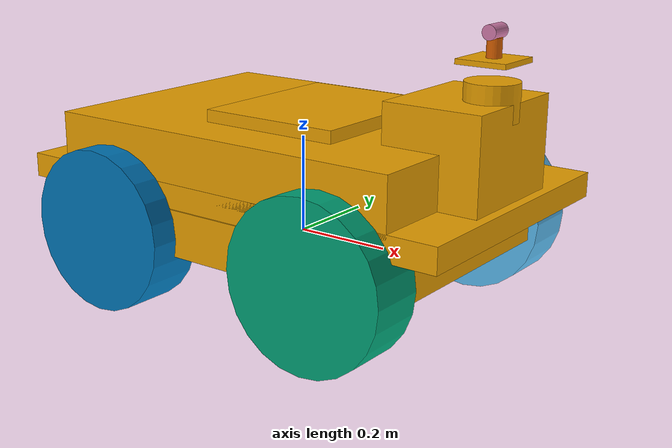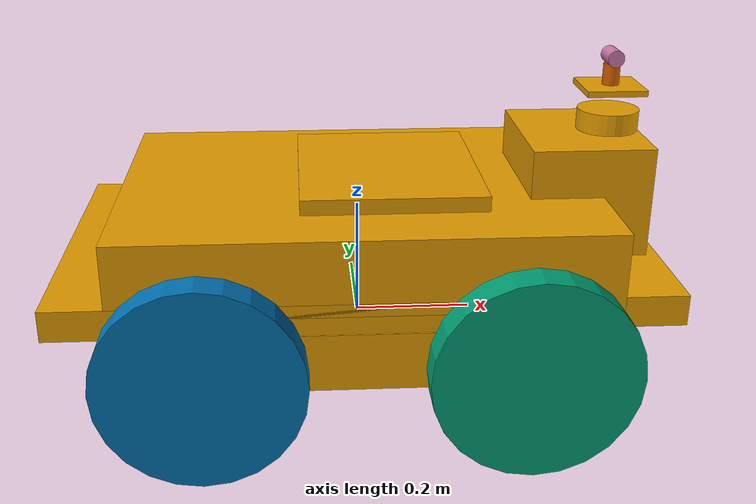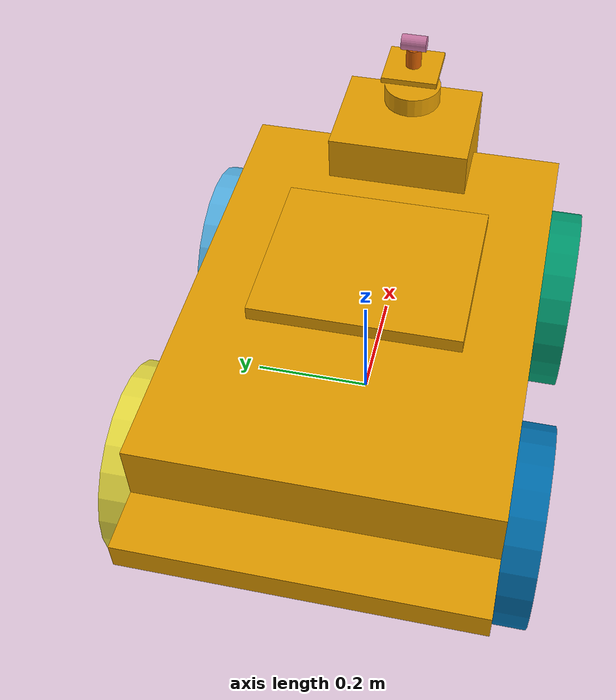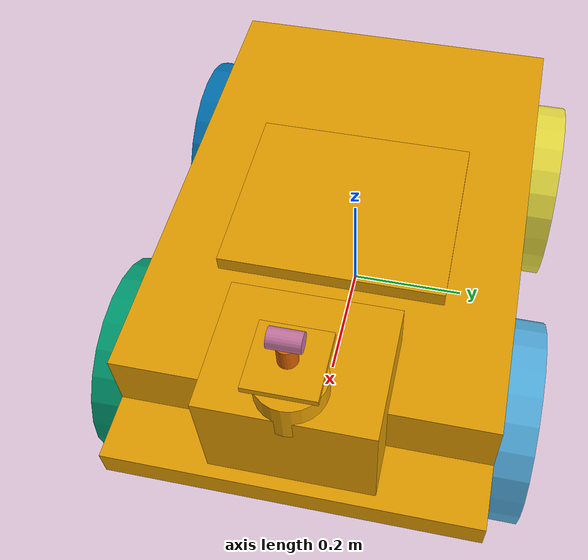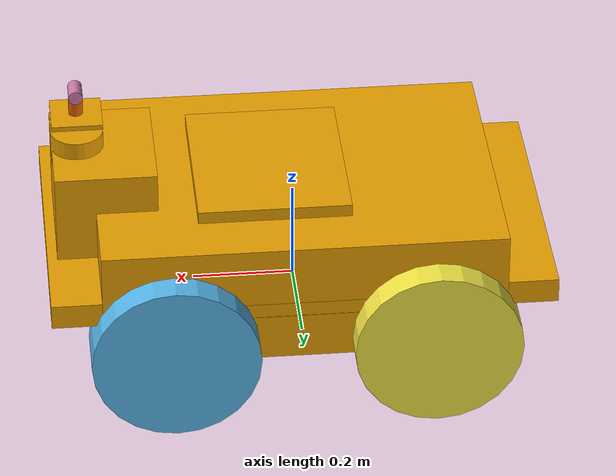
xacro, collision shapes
<?xml version="1.0" ?>
<robot name="husky_robot_model">

  <joint name="husky_robot_model__front_left_wheel_joint" type="revolute">
    <parent link="husky_robot_model__base_link"/>
    <child link="husky_robot_model__front_left_wheel_link"/>
    <origin rpy="0  0  0" xyz="0.256    0.2854   0.03282"/>
    <axis xyz="0  1  0"/>
    <limit effort="0.0" lower="-1e+16" upper="1e+16" velocity="0.0"/>
  </joint>
  <joint name="husky_robot_model__front_right_wheel_joint" type="revolute">
    <parent link="husky_robot_model__base_link"/>
    <child link="husky_robot_model__front_right_wheel_link"/>
    <origin rpy="0  0  0" xyz="0.256   -0.2854   0.03282"/>
    <axis xyz="0  1  0"/>
    <limit effort="0.0" lower="-1e+16" upper="1e+16" velocity="0.0"/>
  </joint>
  <joint name="husky_robot_model__rear_left_wheel_joint" type="revolute">
    <parent link="husky_robot_model__base_link"/>
    <child link="husky_robot_model__rear_left_wheel_link"/>
    <origin rpy="0  0  0" xyz="-0.256    0.2854   0.03282"/>
    <axis xyz="0  1  0"/>
    <limit effort="0.0" lower="-1e+16" upper="1e+16" velocity="0.0"/>
  </joint>
  <joint name="husky_robot_model__rear_right_wheel_joint" type="revolute">
    <parent link="husky_robot_model__base_link"/>
    <child link="husky_robot_model__rear_right_wheel_link"/>
    <origin rpy="0  0  0" xyz="-0.256   -0.2854   0.03282"/>
    <axis xyz="0  1  0"/>
    <limit effort="0.0" lower="-1e+16" upper="1e+16" velocity="0.0"/>
  </joint>
  <joint name="husky_robot_model__pan_gimbal_joint" type="fixed">
    <parent link="laser"/>
    <child link="husky_robot_model__pan_gimbal_link"/>
    <origin rpy="0  0  0" xyz="0 0 0.09"/>
  </joint>
  <joint name="husky_robot_model__tilt_gimbal_joint" type="fixed">
    <parent link="husky_robot_model__pan_gimbal_link"/>
    <child link="camera_link"/>
    <origin rpy="0  0  0" xyz="0     0     0.033"/>
  </joint>

  <!-- Base Link -->
  <link name="husky_robot_model__base_link">
    <inertial>
      <mass value="46.064"/>
      <origin rpy="0  0  0" xyz="-0.00054 -0.08494  0.06232"/>
      <inertia ixx="0.615397" ixy="-0.0240585" ixz="-0.120749" iyy="1.75388" iyz="-0.0028322" izz="2.03641"/>
    </inertial>
    <collision name="husky_robot_model__base_link_collision">
      <origin rpy="0  0  0" xyz="0    0    0.12"/>
      <geometry>
        <box size="0.9874 0.5709 0.05"/>
      </geometry>
    </collision>
    <collision name="husky_robot_model__base_link_collision_bottom">
      <origin rpy="0  0  0" xyz="0     0     0.046"/>
      <geometry>
        <box size="0.80 0.5709 0.095"/>
      </geometry>
    </collision>
    <collision name="husky_robot_model__base_link_collision_1">
      <origin rpy="0  0  0" xyz="0       0       0.18562"/>
      <geometry>
        <box size="0.78992 0.5709 0.12375"/>
      </geometry>
    </collision>
    <collision name="husky_robot_model__base_link_fixed_joint_lump__camera/camera_link_collision_1">
      <origin rpy="0  0  0" xyz="0    0    0.05"/>
      <geometry>
        <box size="0.0078 0.13 0.0192"/>
      </geometry>
    </collision>
    <collision name="husky_robot_model__base_link_fixed_joint_lump__sensor_tower_8">
      <origin rpy="0  0  0" xyz="0.374  0     0.215"/>
      <geometry>
        <box size="0.2 0.25 0.225"/>
      </geometry>
    </collision>
    <collision name="husky_robot_model__base_link_fixed_joint_lump__computer_block_9">
      <origin rpy="0  0  0" xyz="0.05   0     0.185"/>
      <geometry>
        <box size="0.30 0.355 0.175"/>
      </geometry>
    </collision>
    <visual name="husky_robot_model__base_link_visual">
      <origin rpy="0  0  0" xyz="0  0  0"/>
      <geometry>
        <mesh filename="package://husky_description/meshes/base_link.dae" scale="1 1 1"/>
      </geometry>
    </visual>
    <visual name="husky_robot_model__base_link_fixed_joint_lump__front_bumper_link_visual_3">
      <origin rpy="0  0  0" xyz="0.48   0     0.091"/>
      <geometry>
        <mesh filename="package://husky_description/meshes/bumper.dae" scale="1 1 1"/>
      </geometry>
    </visual>
    <visual name="husky_robot_model__base_link_fixed_joint_lump__rear_bumper_link_visual_4">
      <origin rpy="0       0       3.14159" xyz="-0.48   0     0.091"/>
      <geometry>
        <mesh filename="package://husky_description/meshes/bumper.dae" scale="1 1 1"/>
      </geometry>
    </visual>
    <visual name="husky_robot_model__base_link_fixed_joint_lump__top_chassis_link_visual_5">
      <origin rpy="0  0  0" xyz="0  0  0"/>
      <geometry>
        <mesh filename="package://husky_description/meshes/top_chassis.dae" scale="1 1 1"/>
      </geometry>
    </visual>
    <visual name="husky_robot_model__base_link_fixed_joint_lump__user_rail_link_visual_13">
      <origin rpy="0  0  0" xyz="0.272  0     0.245"/>
      <geometry>
        <mesh filename="package://husky_description/meshes/user_rail.dae" scale="1 1 1"/>
      </geometry>
    </visual>
    <visual name="husky_robot_model__base_link_fixed_joint_lump__sensor_tower_16">
      <origin rpy="0  0  0" xyz="0.374  0     0.215"/>
      <geometry>
        <box size="0.2 0.25 0.225"/>
      </geometry>
    </visual>
    <visual name="husky_robot_model__base_link_fixed_joint_lump__computer_block_17">
      <origin rpy="0  0  0" xyz="0.05   0     0.185"/>
      <geometry>
        <box size="0.30 0.355 0.175"/>
      </geometry>
    </visual>
  </link>
  <link name="husky_robot_model__front_left_wheel_link">
    <inertial>
      <mass value="2.637"/>
      <origin rpy="0  0  0" xyz="0  0  0"/>
      <inertia ixx="0.02467" ixy="0" ixz="0" iyy="0.04411" iyz="0" izz="0.02467"/>
    </inertial>
    <collision name="husky_robot_model__front_left_wheel_link_collision">
      <origin rpy="1.57079  0       0" xyz="0  0  0"/>
      <geometry>
        <cylinder length="0.1143" radius="0.1651"/>
      </geometry>
    </collision>
    <visual name="husky_robot_model__front_left_wheel_link_visual">
      <origin rpy="0  0  0" xyz="0  0  0"/>
      <geometry>
        <mesh filename="package://husky_description/meshes/wheel.dae" scale="1 1 1"/>
      </geometry>
    </visual>
  </link>
  <link name="husky_robot_model__front_right_wheel_link">
    <inertial>
      <mass value="2.637"/>
      <origin rpy="0  0  0" xyz="0  0  0"/>
      <inertia ixx="0.02467" ixy="0" ixz="0" iyy="0.04411" iyz="0" izz="0.02467"/>
    </inertial>
    <collision name="husky_robot_model__front_right_wheel_link_collision">
      <origin rpy="1.57079  0       0" xyz="0  0  0"/>
      <geometry>
        <cylinder length="0.1143" radius="0.1651"/>
      </geometry>
    </collision>
    <visual name="husky_robot_model__front_right_wheel_link_visual">
      <origin rpy="0  0  0" xyz="0  0  0"/>
      <geometry>
        <mesh filename="package://husky_description/meshes/wheel.dae" scale="1 1 1"/>
      </geometry>
    </visual>
  </link>
  <link name="husky_robot_model__rear_left_wheel_link">
    <inertial>
      <mass value="2.637"/>
      <origin rpy="0  0  0" xyz="0  0  0"/>
      <inertia ixx="0.02467" ixy="0" ixz="0" iyy="0.04411" iyz="0" izz="0.02467"/>
    </inertial>
    <collision name="husky_robot_model__rear_left_wheel_link_collision">
      <origin rpy="1.57079  0       0" xyz="0  0  0"/>
      <geometry>
        <cylinder length="0.1143" radius="0.1651"/>
      </geometry>
    </collision>
    <visual name="husky_robot_model__rear_left_wheel_link_visual">
      <origin rpy="0  0  0" xyz="0  0  0"/>
      <geometry>
        <mesh filename="package://husky_description/meshes/wheel.dae" scale="1 1 1"/>
      </geometry>
    </visual>
  </link>
  <link name="husky_robot_model__rear_right_wheel_link">
    <inertial>
      <mass value="2.637"/>
      <origin rpy="0  0  0" xyz="0  0  0"/>
      <inertia ixx="0.02467" ixy="0" ixz="0" iyy="0.04411" iyz="0" izz="0.02467"/>
    </inertial>
    <collision name="husky_robot_model__rear_right_wheel_link_collision">
      <origin rpy="1.57079  0       0" xyz="0  0  0"/>
      <geometry>
        <cylinder length="0.1143" radius="0.1651"/>
      </geometry>
    </collision>
    <visual name="husky_robot_model__rear_right_wheel_link_visual">
      <origin rpy="0  0  0" xyz="0  0  0"/>
      <geometry>
        <mesh filename="package://husky_description/meshes/wheel.dae" scale="1 1 1"/>
      </geometry>
    </visual>
  </link>
  <link name="husky_robot_model__pan_gimbal_link">
    <inertial>
      <mass value="0.1"/>
      <origin rpy="0  0  0" xyz="0  0  0"/>
      <inertia ixx="0.000016875" ixy="0" ixz="0" iyy="0.00000001" iyz="0" izz="0.000016875"/>
    </inertial>
    <collision name="husky_robot_model__pan_gimbal_link_collision">
      <origin rpy="0  0  0" xyz="0  0  0"/>
      <geometry>
        <cylinder length="0.045" radius="0.014"/>
      </geometry>
    </collision>
    <visual name="husky_robot_model__pan_gimbal_link_visual">
      <origin rpy="0  0  0" xyz="0  0  0"/>
      <geometry>
        <cylinder length="0.045" radius="0.014"/>
      </geometry>
    </visual>
  </link>

  <link name="camera_link">
    <inertial>
      <mass value="0.1"/>
      <origin rpy="1.57079  0       0" xyz="0  0  0"/>
      <inertia ixx="0.000016875" ixy="0" ixz="0" iyy="0.00000001" iyz="0" izz="0.000016875"/>
    </inertial>
    <collision name="camera_link_collision">
      <origin rpy="1.57079  0       0" xyz="0  0  0"/>
      <geometry>
        <cylinder length="0.045" radius="0.014"/>
      </geometry>
    </collision>
    <visual name="camera_link_visual">
      <origin rpy="1.57079  0       0" xyz="0  0  0"/>
      <geometry>
        <cylinder length="0.045" radius="0.014"/>
      </geometry>
    </visual>
    <visual name="camera_link_fixed_joint_lump__camera/camera_link_visual_0">
      <origin rpy="0  0  0" xyz="0    0    0.03"/>
      <geometry>
        <mesh filename="package://husky_description/meshes/realsense.dae" scale="1.0 1.0 1.0"/>
      </geometry>
    </visual>
    <visual name="camera_link_fixed_joint_lump_bot_camera_plate_link_visual_1">
      <origin rpy="0  0  0" xyz="0     0     0.017"/>
      <geometry>
        <box size="0.025 0.13 0.007"/>
      </geometry>
    </visual>
    <visual name="camera_link_fixed_joint_lump_bot_camera_plate_link_visual_2">
      <origin rpy="0  0  0" xyz="0     0     0.042"/>
      <geometry>
        <box size="0.025 0.13 0.007"/>
      </geometry>
    </visual>
  </link>

  <joint name="camera_depth_joint" type="fixed">
    <origin xyz="0 0 0" rpy="-1.57 0 -1.57"/>
    <parent link="camera_link"/>
    <child link="camera_depth_frame"/>
  </joint>

  <link name="camera_depth_frame">
  </link>

<!-- LIDAR -->
  <link name="laser">
    <inertial>
      <mass value="0.09"/>
      <inertia ixx="4.275e-05" ixy="0" ixz="0" iyy="4.275e-05" iyz="0" izz="5.5125e-05"/>
    </inertial>
    <collision name="husky_robot_model__base_link_fixed_joint_lump__velodyne_base_link_collision_6">
      <origin rpy="0  0  0" xyz="0 0 0"/>
      <geometry>
        <cylinder length="0.0717" radius="0.0516"/>
      </geometry>
    </collision>
    <collision name="husky_robot_model__base_link_fixed_joint_lump__velodyne_gimbal_plate_base_link_collision_7">
      <origin rpy="0  0  0" xyz="0 0 0.0717"/>
      <geometry>
        <box size="0.1 0.1 0.01"/>
      </geometry>
    </collision>
    <visual name="husky_robot_model__base_link_fixed_joint_lump__velodyne_base_link_visual_10">
      <origin rpy="0  0  0" xyz="0  0     0"/>
      <geometry>
        <mesh filename="package://husky_description/meshes/VLP16_base_1.dae" scale="1 1 1"/>
      </geometry>
    </visual>
    <visual name="husky_robot_model__base_link_fixed_joint_lump__velodyne_base_link_visual_11">
      <origin rpy="0  0  0" xyz="0  0     0"/>
      <geometry>
        <mesh filename="package://husky_description/meshes/VLP16_base_2.dae" scale="1 1 1"/>
      </geometry>
    </visual>
    <visual name="husky_robot_model__base_link_fixed_joint_lump__velodyne_visual_12">
      <origin rpy="0  0  0" xyz="0  0     0"/>
      <geometry>
        <mesh filename="package://husky_description/meshes/VLP16_scan.dae" scale="1 1 1"/>
      </geometry>
    </visual>
    <visual name="husky_robot_model__base_link_fixed_joint_lump__velodyne_gimbal_plate_15">
      <origin rpy="0  0  0" xyz="0 0 0.0717"/>
      <geometry>
        <box size="0.06 0.06 0.01"/>
      </geometry>
    </visual>
  </link>

  <joint name="rplidar_joint" type="fixed">
    <origin xyz="0.424 0 0.327" rpy="0 0 0" />
    <parent link="husky_robot_model__base_link"/>
    <child link="laser"/>
  </joint>

<!-- Gazebo Plugins -->

  <!-- Skid steer drive plugin -->
  <gazebo>
    <plugin name="skid_steer_drive_controller" filename="libgazebo_ros_skid_steer_drive.so">
      <updateRate>40.0</updateRate>
      <leftFrontJoint>husky_robot_model__front_left_wheel_joint</leftFrontJoint>
      <rightFrontJoint>husky_robot_model__front_right_wheel_joint</rightFrontJoint>
      <leftRearJoint>husky_robot_model__rear_left_wheel_joint</leftRearJoint>
      <rightRearJoint>husky_robot_model__rear_right_wheel_joint</rightRearJoint>
      <wheelSeparation>0.57</wheelSeparation>
      <wheelDiameter>0.34</wheelDiameter>
      <robotBaseFrame>husky_robot_model__base_link</robotBaseFrame>
      <torque>60</torque>
      <topicName>cmd_vel</topicName>

      <commandTopic>cmd_vel</commandTopic>
      <odometryTopic>odom</odometryTopic>
      <odometryFrame>odom</odometryFrame>

      <broadcastTF>true</broadcastTF>
   </plugin>
  </gazebo>

  <!-- Laser plugin -->
  <gazebo reference="laser">
    <sensor type="ray" name="head_rplidar_sensor">
      <pose>0.424 0 0.327 0 0 0</pose>
      <visualize>true</visualize>
      <update_rate>40</update_rate>
      <ray>
        <scan>
          <horizontal>
            <samples>720</samples>
            <resolution>1</resolution>
            <min_angle>-2.35619</min_angle>
            <max_angle>2.35619</max_angle>
          </horizontal>
        </scan>
        <range>
          <min>0.5</min>
          <max>20.0</max>
          <resolution>0.01</resolution>
        </range>
        <noise>
          <type>gaussian</type>
          <mean>0.0</mean>
          <stddev>0.01</stddev>
        </noise>
      </ray>
      <plugin name="gazebo_ros_head_rplidar_controller" filename="libgazebo_ros_laser.so">
        <topicName>/scan</topicName>
        <frameName>laser</frameName>
      </plugin>
    </sensor>
  </gazebo>

  <!-- Camera plugin -->
  <gazebo reference="camera_link">
    <sensor type="depth" name="intelrealsenseD435i">
      <always_on>1</always_on>
      <visualize>true</visualize>
      <camera>
        <horizontal_fov>1.57</horizontal_fov>
        <image>
          <width>640</width>
          <height>480</height>
          <format>R8G8B8</format>
        </image>
        <depth_camera>

        </depth_camera>
        <clip>
          <near>0.1</near>
          <far>100</far>
        </clip>
      </camera>
      <plugin name="intelrealsense" filename="libgazebo_ros_openni_kinect.so">
        <alwaysOn>true</alwaysOn>
        <updateRate>10.0</updateRate>
        <cameraName>camera</cameraName>
        <frameName>camera_depth_frame</frameName>
        <imageTopicName>/camera/color/image_raw</imageTopicName>
        <depthImageTopicName>/camera/depth/image_rect_raw</depthImageTopicName>
        <pointCloudTopicName>depth/points</pointCloudTopicName>
        <cameraInfoTopicName>/camera/color/camera_info</cameraInfoTopicName>
        <depthImageCameraInfoTopicName>/camera/depth/camera_info</depthImageCameraInfoTopicName>
        <pointCloudCutoff>0.2</pointCloudCutoff>
         <pointCloudCutoffMax>10.0</pointCloudCutoffMax>
        <hackBaseline>0.07</hackBaseline>
        <distortionK1>0.0</distortionK1>
        <distortionK2>0.0</distortionK2>
        <distortionK3>0.0</distortionK3>
        <distortionT1>0.0</distortionT1>
        <distortionT2>0.0</distortionT2>
        <CxPrime>0.0</CxPrime>
        <Cx>0.0</Cx>
        <Cy>0.0</Cy>
        <focalLength>0.0</focalLength>
      </plugin>
    </sensor>
  </gazebo>

  <!-- IMU plugin -->
  <gazebo reference="husky_robot_model__base_link">
    <gravity>true</gravity>
    <sensor name="imu_sensor" type="imu">
      <always_on>true</always_on>
      <update_rate>100</update_rate>
      <visualize>false</visualize>
      <topic>__default_topic__</topic>
      <plugin filename="libgazebo_ros_imu_sensor.so" name="imu_plugin">
        <topicName>imu</topicName>
        <bodyName>husky_robot_model__base_link</bodyName>
        <updateRateHZ>10.0</updateRateHZ>
        <gaussianNoise>0.0</gaussianNoise>
        <xyzOffset>0 0 0</xyzOffset>
        <rpyOffset>0 0 0</rpyOffset>
        <frameName>husky_robot_model__base_link</frameName>
        <initialOrientationAsReference>false</initialOrientationAsReference>
      </plugin>
      <pose>0 0 0 0 0 0</pose>
    </sensor>
  </gazebo>

</robot>
